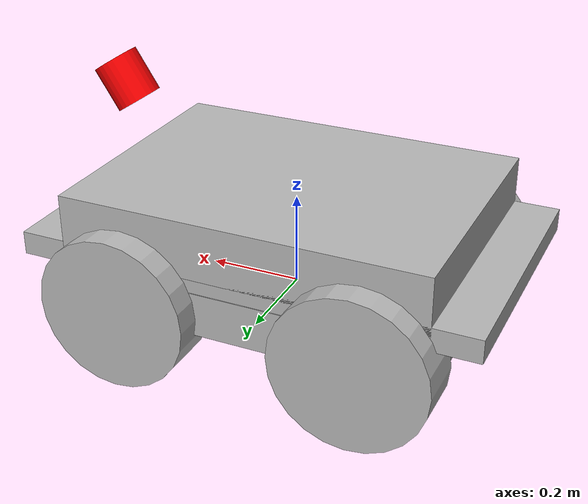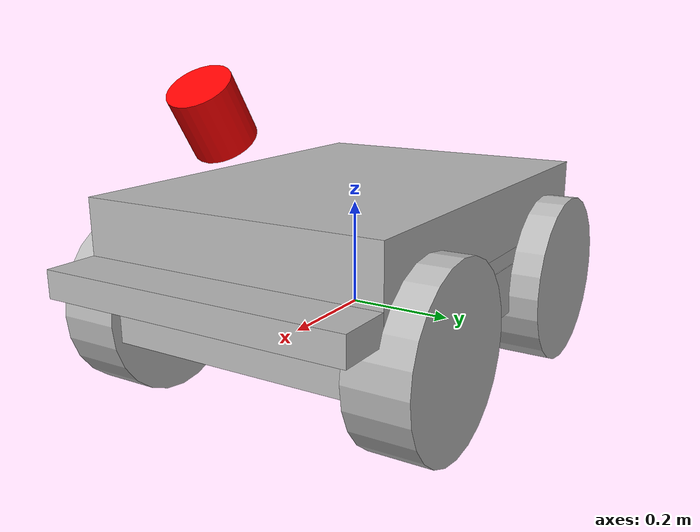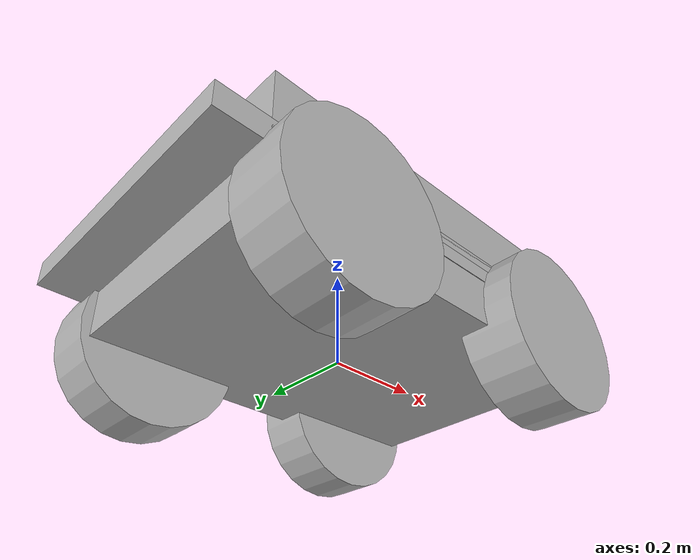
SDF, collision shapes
<?xml version='1.0' encoding='utf-8'?>
<sdf version="1.6">
  <model name="husky">

    <!-- Base -->
    <link name="base_link">
      <pose frame="">0 0 0 0 0 0</pose>
      <inertial>
        <pose frame="">-0.000543 -0.084945 0.062329 0 -0 0</pose>
        <mass>46.064</mass>
        <inertia>
          <ixx>0.615397</ixx>
          <ixy>-0.0240585</ixy>
          <ixz>-0.120749</ixz>
          <iyy>1.75388</iyy>
          <iyz>-0.0028322</iyz>
          <izz>2.03641</izz>
        </inertia>
      </inertial>

      <collision name="base_link_collision">
        <pose frame="">0 0 0.12 0 0 0</pose>
        <geometry>
          <box>
            <size>0.9874 0.5709 0.05</size>
          </box>
        </geometry>
      </collision>
      <collision name="base_link_collision_bottom">
        <pose frame="">0 0 0.046 0 0 0</pose>
        <geometry>
          <box>
            <size>0.80 0.5709 0.095</size>
          </box>
        </geometry>
      </collision>
      <collision name="base_link_collision_1">
        <pose frame="">0 0 0.185625 0 0 0</pose>
        <geometry>
          <box>
            <size>0.78992 0.5709 0.12375</size>
          </box>
        </geometry>
      </collision>
      <collision name="base_link_fixed_joint_lump__landing_pad_9">
        <pose>0.0 0 0.155 0 0 0</pose>
        <geometry>
          <box>
            <size>0.500 0.385 0.155</size>
          </box>
        </geometry>
      </collision>

      <!-- Base -->
      <visual name="base_link_visual">
        <pose frame="">0 0 0 0 0 0</pose>
        <geometry>
          <mesh>
            <scale>1 1 1</scale>
            <uri>meshes/base_link.dae</uri>
          </mesh>
        </geometry>
      </visual>
      <!-- Front bumper -->
      <visual name="base_link_fixed_joint_lump__front_bumper_link_visual_3">
        <pose frame="">0.48 0 0.091 0 -0 0</pose>
        <geometry>
          <mesh>
            <scale>1 1 1</scale>
            <uri>meshes/bumper.dae</uri>
          </mesh>
        </geometry>
      </visual>
      <!-- Rear bumper -->
      <visual name="base_link_fixed_joint_lump__rear_bumper_link_visual_4">
        <pose frame="">-0.48 0 0.091 0 -0 3.14159</pose>
        <geometry>
          <mesh>
            <scale>1 1 1</scale>
            <uri>meshes/bumper.dae</uri>
          </mesh>
        </geometry>
      </visual>
      <!-- Chassis -->
      <visual name="base_link_fixed_joint_lump__top_chassis_link_visual_5">
        <pose frame="">0 0 0 0 -0 0</pose>
        <geometry>
          <mesh>
            <scale>1 1 1</scale>
            <uri>meshes/top_chassis.dae</uri>
          </mesh>
        </geometry>
      </visual>
      <!-- Top rail -->
      <visual name="base_link_fixed_joint_lump__user_rail_link_visual_13">
        <pose frame="">0.272 0 0.245 0 -0 0</pose>
        <geometry>
          <mesh>
            <scale>1 1 1</scale>
            <uri>meshes/user_rail.dae</uri>
          </mesh>
        </geometry>
      </visual>
      <!-- Cover -->
      <visual name="base_link_fixed_joint_lump__landing_pad_17">
        <pose>0.0 0 0.155 0 -0 0</pose>
        <geometry>
          <box>
            <size>0.500 0.385 0.155</size>
          </box>
        </geometry>
      </visual>

      <gravity>1</gravity>
      <velocity_decay />
      <self_collide>0</self_collide>
      <enable_wind>0</enable_wind>
      <kinematic>0</kinematic>
    </link>

    <!-- Front left Wheel -->
    <link name="front_left_wheel_link">
      <pose frame="">0.256 0.2854 0.03282 0 -0 0</pose>
      <inertial>
        <pose frame="">0 0 0 0 -0 0</pose>
        <mass>2.637</mass>
        <inertia>
          <ixx>0.02467</ixx>
          <ixy>0</ixy>
          <ixz>0</ixz>
          <iyy>0.04411</iyy>
          <iyz>0</iyz>
          <izz>0.02467</izz>
        </inertia>
      </inertial>
      <collision name="front_left_wheel_link_collision">
        <pose frame="">0 0 0 1.5707963267948966 -0 0</pose>
        <geometry>
          <cylinder>
            <length>0.1143</length>
            <radius>0.1651</radius>
          </cylinder>
        </geometry>
        <surface>
          <contact>
            <ode>
              <kp>1e+07</kp>
              <kd>1</kd>
            </ode>
          </contact>
          <friction>
            <ode>
              <mu>0.5</mu>
              <mu2>1</mu2>
              <slip1>0.00062</slip1>
              <slip2>0</slip2>
              <fdir1>0 0 1</fdir1>
            </ode>
          </friction>
        </surface>
      </collision>
      <visual name="front_left_wheel_link_visual">
        <pose frame="">0 0 0 0 -0 0</pose>
        <geometry>
          <mesh>
            <scale>1 1 1</scale>
            <uri>meshes/wheel.dae</uri>
          </mesh>
        </geometry>
      </visual>

      <gravity>1</gravity>
      <velocity_decay />
      <self_collide>0</self_collide>
      <enable_wind>0</enable_wind>
      <kinematic>0</kinematic>
    </link>
    <joint name="front_left_wheel_joint" type="revolute">
      <child>front_left_wheel_link</child>
      <parent>base_link</parent>
      <axis>
        <xyz>0 1 0</xyz>
        <limit>
          <lower>-1e+16</lower>
          <upper>1e+16</upper>
        </limit>
        <dynamics>
          <spring_reference>0</spring_reference>
          <spring_stiffness>0</spring_stiffness>
        </dynamics>
        <use_parent_model_frame>1</use_parent_model_frame>
      </axis>
    </joint>

    <!-- Front right Wheel -->
    <link name="front_right_wheel_link">
      <pose frame="">0.256 -0.2854 0.03282 0 -0 0</pose>
      <inertial>
        <pose frame="">0 0 0 0 -0 0</pose>
        <mass>2.637</mass>
        <inertia>
          <ixx>0.02467</ixx>
          <ixy>0</ixy>
          <ixz>0</ixz>
          <iyy>0.04411</iyy>
          <iyz>0</iyz>
          <izz>0.02467</izz>
        </inertia>
      </inertial>
      <collision name="front_right_wheel_link_collision">
        <pose frame="">0 0 0 1.5707963267948966 -0 0</pose>
        <geometry>
          <cylinder>
            <length>0.1143</length>
            <radius>0.1651</radius>
          </cylinder>
        </geometry>
        <surface>
          <contact>
            <ode>
              <kp>1e+07</kp>
              <kd>1</kd>
            </ode>
          </contact>
          <friction>
            <ode>
              <mu>0.5</mu>
              <mu2>1</mu2>
              <slip1>0.00062</slip1>
              <slip2>0</slip2>
              <fdir1>0 0 1</fdir1>
            </ode>
          </friction>
        </surface>
      </collision>
      <visual name="front_right_wheel_link_visual">
        <pose frame="">0 0 0 0 -0 0</pose>
        <geometry>
          <mesh>
            <scale>1 1 1</scale>
            <uri>meshes/wheel.dae</uri>
          </mesh>
        </geometry>
      </visual>
      <gravity>1</gravity>
      <velocity_decay />
      <self_collide>0</self_collide>
      <enable_wind>0</enable_wind>
      <kinematic>0</kinematic>
    </link>
    <joint name="front_right_wheel_joint" type="revolute">
      <child>front_right_wheel_link</child>
      <parent>base_link</parent>
      <axis>
        <xyz>0 1 0</xyz>
        <limit>
          <lower>-1e+16</lower>
          <upper>1e+16</upper>
        </limit>
        <dynamics>
          <spring_reference>0</spring_reference>
          <spring_stiffness>0</spring_stiffness>
        </dynamics>
        <use_parent_model_frame>1</use_parent_model_frame>
      </axis>
    </joint>

    <!-- Rear left wheel -->
    <link name="rear_left_wheel_link">
      <pose frame="">-0.256 0.2854 0.03282 0 -0 0</pose>
      <inertial>
        <pose frame="">0 0 0 0 -0 0</pose>
        <mass>2.637</mass>
        <inertia>
          <ixx>0.02467</ixx>
          <ixy>0</ixy>
          <ixz>0</ixz>
          <iyy>0.04411</iyy>
          <iyz>0</iyz>
          <izz>0.02467</izz>
        </inertia>
      </inertial>
      <collision name="rear_left_wheel_link_collision">
        <pose frame="">0 0 0 1.5707963267948966 -0 0</pose>
        <geometry>
          <cylinder>
            <length>0.1143</length>
            <radius>0.1651</radius>
          </cylinder>
        </geometry>
        <surface>
          <contact>
            <ode>
              <kp>1e+07</kp>
              <kd>1</kd>
            </ode>
          </contact>
          <friction>
            <ode>
              <mu>0.5</mu>
              <mu2>1</mu2>
              <slip1>0.00062</slip1>
              <slip2>0</slip2>
              <fdir1>0 0 1</fdir1>
            </ode>
          </friction>
        </surface>
      </collision>
      <visual name="rear_left_wheel_link_visual">
        <pose frame="">0 0 0 0 -0 0</pose>
        <geometry>
          <mesh>
            <scale>1 1 1</scale>
            <uri>meshes/wheel.dae</uri>
          </mesh>
        </geometry>
      </visual>
      <gravity>1</gravity>
      <velocity_decay />
      <self_collide>0</self_collide>
      <enable_wind>0</enable_wind>
      <kinematic>0</kinematic>
    </link>
    <joint name="rear_left_wheel_joint" type="revolute">
      <child>rear_left_wheel_link</child>
      <parent>base_link</parent>
      <axis>
        <xyz>0 1 0</xyz>
        <limit>
          <lower>-1e+16</lower>
          <upper>1e+16</upper>
        </limit>
        <dynamics>
          <spring_reference>0</spring_reference>
          <spring_stiffness>0</spring_stiffness>
        </dynamics>
        <use_parent_model_frame>1</use_parent_model_frame>
      </axis>
    </joint>

    <!-- Rear right wheel -->
    <link name="rear_right_wheel_link">
      <pose frame="">-0.256 -0.2854 0.03282 0 -0 0</pose>
      <inertial>
        <pose frame="">0 0 0 0 -0 0</pose>
        <mass>2.637</mass>
        <inertia>
          <ixx>0.02467</ixx>
          <ixy>0</ixy>
          <ixz>0</ixz>
          <iyy>0.04411</iyy>
          <iyz>0</iyz>
          <izz>0.02467</izz>
        </inertia>
      </inertial>
      <collision name="rear_right_wheel_link_collision">
        <pose frame="">0 0 0 1.5707963267948966 -0 0</pose>
        <geometry>
          <cylinder>
            <length>0.1143</length>
            <radius>0.1651</radius>
          </cylinder>
        </geometry>
        <surface>
          <contact>
            <ode>
              <kp>1e+07</kp>
              <kd>1</kd>
            </ode>
          </contact>
          <friction>
            <ode>
              <mu>0.5</mu>
              <mu2>1</mu2>
              <slip1>0.00062</slip1>
              <slip2>0</slip2>
              <fdir1>0 0 1</fdir1>
            </ode>
          </friction>
        </surface>
      </collision>
      <visual name="rear_right_wheel_link_visual">
        <pose frame="">0 0 0 0 -0 0</pose>
        <geometry>
          <mesh>
            <scale>1 1 1</scale>
            <uri>meshes/wheel.dae</uri>
          </mesh>
        </geometry>
      </visual>
      <gravity>1</gravity>
      <velocity_decay />
      <self_collide>0</self_collide>
      <enable_wind>0</enable_wind>
      <kinematic>0</kinematic>
    </link>
    <joint name="rear_right_wheel_joint" type="revolute">
      <child>rear_right_wheel_link</child>
      <parent>base_link</parent>
      <axis>
        <xyz>0 1 0</xyz>
        <limit>
          <lower>-1e+16</lower>
          <upper>1e+16</upper>
        </limit>
        <dynamics>
          <spring_reference>0</spring_reference>
          <spring_stiffness>0</spring_stiffness>
        </dynamics>
        <use_parent_model_frame>1</use_parent_model_frame>
      </axis>
    </joint>

    <!-- Lidar -->
    <link name="lidar_link">
      <pose>0.4 0 0.4 0 0.575959 0</pose>
      <inertial>
        <mass>0.1</mass>
        <inertia>
          <ixx>0.000166667</ixx>
          <iyy>0.000166667</iyy>
          <izz>0.000166667</izz>
        </inertia>
      </inertial>
      <collision name="collision">
        <geometry>
          <cylinder>
            <radius>0.05</radius>
            <length>0.1</length>
          </cylinder>
        </geometry>
      </collision>
      <visual name="visual">
        <geometry>
          <cylinder>
            <radius>0.05</radius>
            <length>0.1</length>
          </cylinder>
        </geometry>
        <material>
          <ambient>1 0 0 1</ambient>
          <diffuse>1 0 0 1</diffuse>
        </material>
      </visual>
      <sensor name='os1_32' type='gpu_lidar'>
        <topic>lidar</topic>
        <visualize>true</visualize>
        <always_on>true</always_on>
        <update_rate>10</update_rate>
        <lidar>
          <scan>
            <horizontal>
              <samples>1024</samples>
              <resolution>1</resolution>
              <min_angle>-1.396263</min_angle>
              <max_angle>1.396263</max_angle>
            </horizontal>
            <vertical>
              <samples>32</samples>
              <resolution>1</resolution>
              <min_angle>-0.261799</min_angle>
              <max_angle>0.261799</max_angle>
            </vertical>
          </scan>
          <range>
            <min>0.1</min>
            <max>120.0</max>
            <resolution>0.01</resolution>
          </range>
        </lidar>
      </sensor>
    </link>
    <joint name='lidar_joint' type='fixed'>
      <child>lidar_link</child>
      <parent>base_link</parent>
    </joint>

    <static>0</static>
  </model>
</sdf>
